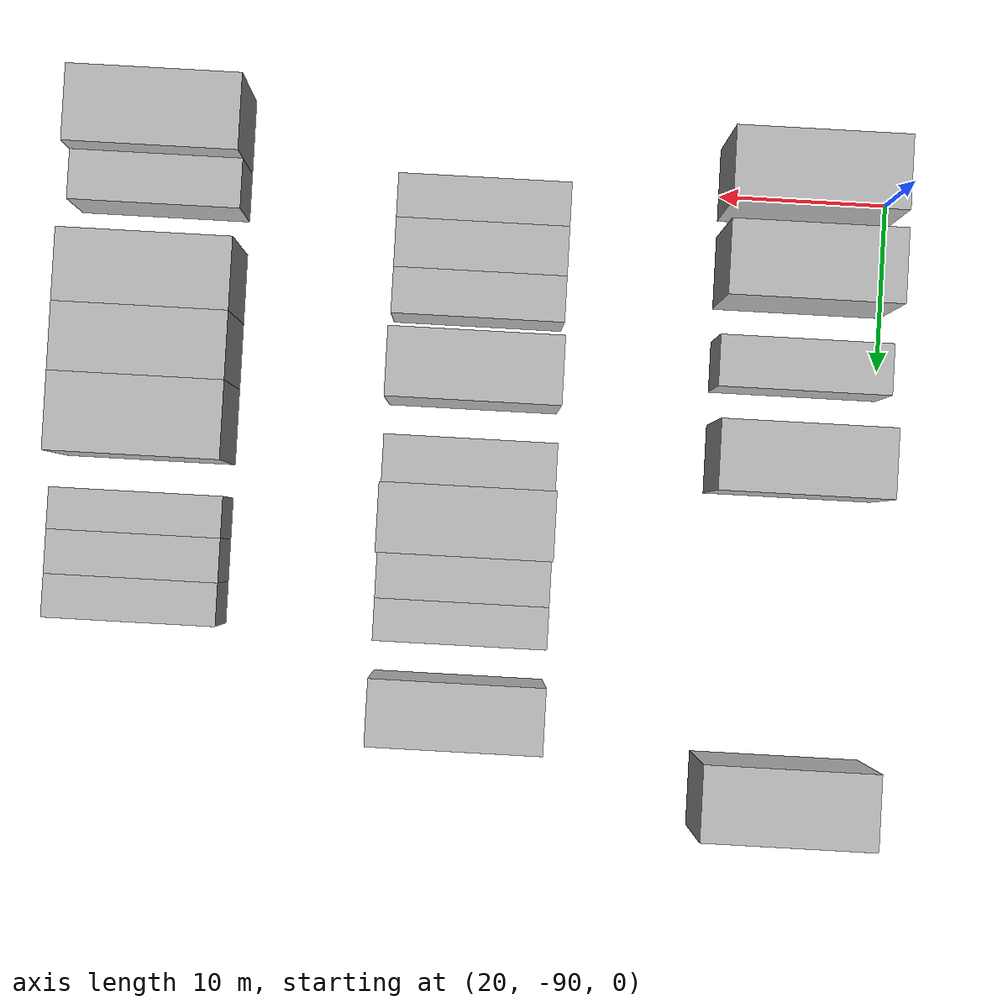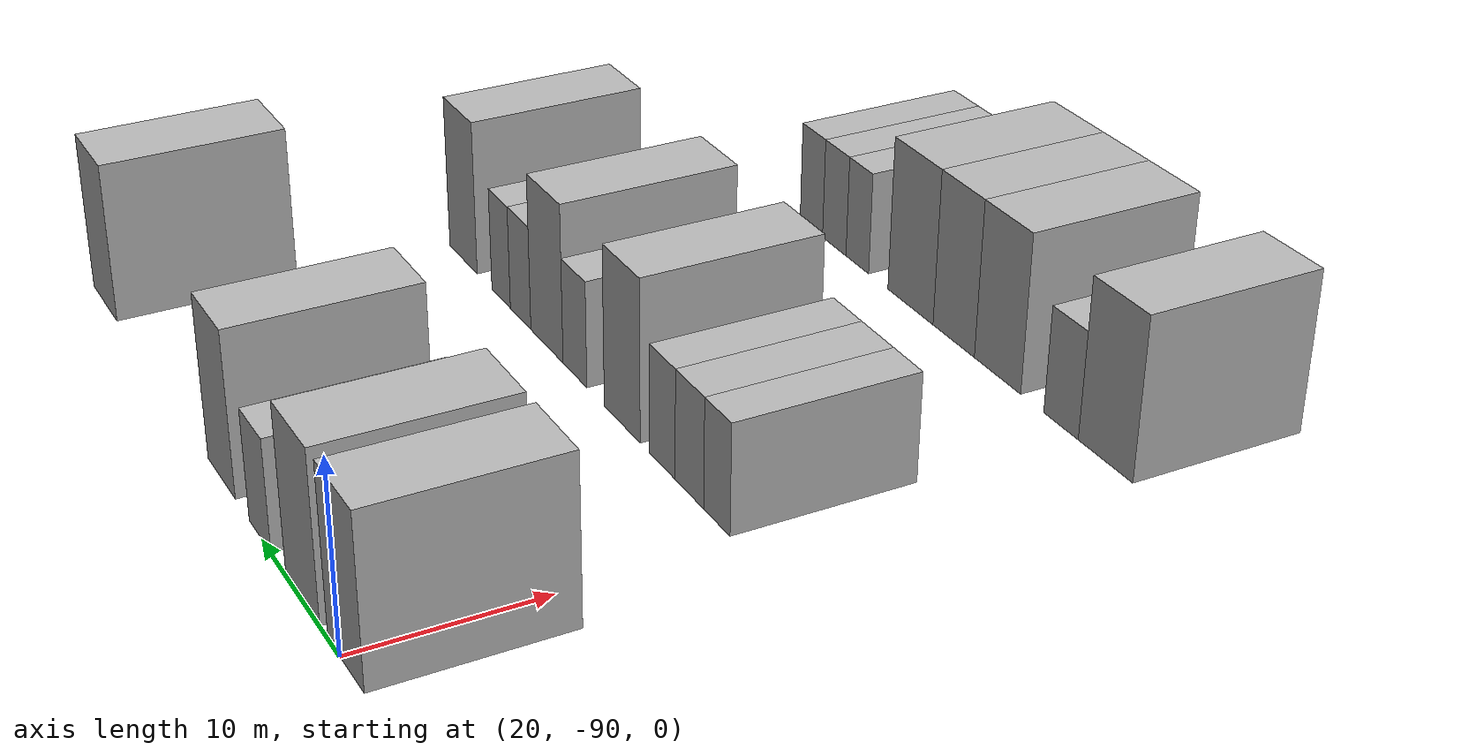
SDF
<sdf version="1.6">
 <world name="default">
  <model name="building_37">
   <static>1</static>
   <pose>25.0000 -90.6759 0 0.000000 0.000000 0.000000</pose>
   <link name="link">
    <pose>0 0 4.50 0 0 0</pose>
    <collision name="collision"><geometry><box><size>10.0000 4.2906 9.0000</size></box></geometry></collision>
    <visual name="visual">
     <cast_shadows>0</cast_shadows>
     <geometry><box><size>10.0000 4.2906 9.0000</size></box></geometry>
     <material>
      <script>
       <uri>model://HANNAS_wall/materials/scripts</uri>
       <uri>model://HANNAS_wall/materials/textures</uri>
       <name>vrc/HANNAS_wall</name>
      </script>
     </material>
    </visual>
   </link>
  </model>
  <model name="building_38">
   <static>1</static>
   <pose>25.0000 -85.3787 0 0.000000 0.000000 0.000000</pose>
   <link name="link">
    <pose>0 0 4.50 0 0 0</pose>
    <collision name="collision"><geometry><box><size>10.0000 4.3038 9.0000</size></box></geometry></collision>
    <visual name="visual">
     <cast_shadows>0</cast_shadows>
     <geometry><box><size>10.0000 4.3038 9.0000</size></box></geometry>
     <material>
      <script>
       <uri>model://HANNAS_wall/materials/scripts</uri>
       <uri>model://HANNAS_wall/materials/textures</uri>
       <name>vrc/HANNAS_wall</name>
      </script>
     </material>
    </visual>
   </link>
  </model>
  <model name="building_39">
   <static>1</static>
   <pose>25.0000 -79.7324 0 0.000000 0.000000 0.000000</pose>
   <link name="link">
    <pose>0 0 3.00 0 0 0</pose>
    <collision name="collision"><geometry><box><size>10.0000 2.9890 6.0000</size></box></geometry></collision>
    <visual name="visual">
     <cast_shadows>0</cast_shadows>
     <geometry><box><size>10.0000 2.9890 6.0000</size></box></geometry>
     <material>
      <script>
       <uri>model://HANNAS_wall/materials/scripts</uri>
       <uri>model://HANNAS_wall/materials/textures</uri>
       <name>vrc/HANNAS_wall</name>
      </script>
     </material>
    </visual>
   </link>
  </model>
  <model name="building_40">
   <static>1</static>
   <pose>25.0000 -74.2190 0 0.000000 0.000000 0.000000</pose>
   <link name="link">
    <pose>0 0 4.50 0 0 0</pose>
    <collision name="collision"><geometry><box><size>10.0000 4.0378 9.0000</size></box></geometry></collision>
    <visual name="visual">
     <cast_shadows>0</cast_shadows>
     <geometry><box><size>10.0000 4.0378 9.0000</size></box></geometry>
     <material>
      <script>
       <uri>model://HANNAS_wall/materials/scripts</uri>
       <uri>model://HANNAS_wall/materials/textures</uri>
       <name>vrc/HANNAS_wall</name>
      </script>
     </material>
    </visual>
   </link>
  </model>
  <model name="building_41">
   <static>1</static>
   <pose>25.0000 -54.6580 0 0.000000 0.000000 0.000000</pose>
   <link name="link">
    <pose>0 0 4.50 0 0 0</pose>
    <collision name="collision"><geometry><box><size>10.0000 4.3614 9.0000</size></box></geometry></collision>
    <visual name="visual">
     <cast_shadows>0</cast_shadows>
     <geometry><box><size>10.0000 4.3614 9.0000</size></box></geometry>
     <material>
      <script>
       <uri>model://HANNAS_wall/materials/scripts</uri>
       <uri>model://HANNAS_wall/materials/textures</uri>
       <name>vrc/HANNAS_wall</name>
      </script>
     </material>
    </visual>
   </link>
  </model>
  <model name="building_150">
   <static>1</static>
   <pose>44.0000 -88.2064 0 0.000000 0.000000 0.000000</pose>
   <link name="link">
    <pose>0 0 3.00 0 0 0</pose>
    <collision name="collision"><geometry><box><size>10.0000 2.5524 6.0000</size></box></geometry></collision>
    <visual name="visual">
     <cast_shadows>0</cast_shadows>
     <geometry><box><size>10.0000 2.5524 6.0000</size></box></geometry>
     <material>
      <script>
       <uri>model://HANNAS_wall/materials/scripts</uri>
       <uri>model://HANNAS_wall/materials/textures</uri>
       <name>vrc/HANNAS_wall</name>
      </script>
     </material>
    </visual>
   </link>
  </model>
  <model name="building_151">
   <static>1</static>
   <pose>44.0000 -85.4962 0 0.000000 0.000000 0.000000</pose>
   <link name="link">
    <pose>0 0 3.00 0 0 0</pose>
    <collision name="collision"><geometry><box><size>10.0000 2.8680 6.0000</size></box></geometry></collision>
    <visual name="visual">
     <cast_shadows>0</cast_shadows>
     <geometry><box><size>10.0000 2.8680 6.0000</size></box></geometry>
     <material>
      <script>
       <uri>model://HANNAS_wall/materials/scripts</uri>
       <uri>model://HANNAS_wall/materials/textures</uri>
       <name>vrc/HANNAS_wall</name>
      </script>
     </material>
    </visual>
   </link>
  </model>
  <model name="building_152">
   <static>1</static>
   <pose>44.0000 -82.7260 0 0.000000 0.000000 0.000000</pose>
   <link name="link">
    <pose>0 0 3.00 0 0 0</pose>
    <collision name="collision"><geometry><box><size>10.0000 2.6724 6.0000</size></box></geometry></collision>
    <visual name="visual">
     <cast_shadows>0</cast_shadows>
     <geometry><box><size>10.0000 2.6724 6.0000</size></box></geometry>
     <material>
      <script>
       <uri>model://HANNAS_wall/materials/scripts</uri>
       <uri>model://HANNAS_wall/materials/textures</uri>
       <name>vrc/HANNAS_wall</name>
      </script>
     </material>
    </visual>
   </link>
  </model>
  <model name="building_153">
   <static>1</static>
   <pose>44.0000 -78.4082 0 0.000000 0.000000 0.000000</pose>
   <link name="link">
    <pose>0 0 4.50 0 0 0</pose>
    <collision name="collision"><geometry><box><size>10.0000 3.9632 9.0000</size></box></geometry></collision>
    <visual name="visual">
     <cast_shadows>0</cast_shadows>
     <geometry><box><size>10.0000 3.9632 9.0000</size></box></geometry>
     <material>
      <script>
       <uri>model://HANNAS_wall/materials/scripts</uri>
       <uri>model://HANNAS_wall/materials/textures</uri>
       <name>vrc/HANNAS_wall</name>
      </script>
     </material>
    </visual>
   </link>
  </model>
  <model name="building_154">
   <static>1</static>
   <pose>44.0000 -73.0214 0 0.000000 0.000000 0.000000</pose>
   <link name="link">
    <pose>0 0 3.00 0 0 0</pose>
    <collision name="collision"><geometry><box><size>10.0000 2.8102 6.0000</size></box></geometry></collision>
    <visual name="visual">
     <cast_shadows>0</cast_shadows>
     <geometry><box><size>10.0000 2.8102 6.0000</size></box></geometry>
     <material>
      <script>
       <uri>model://HANNAS_wall/materials/scripts</uri>
       <uri>model://HANNAS_wall/materials/textures</uri>
       <name>vrc/HANNAS_wall</name>
      </script>
     </material>
    </visual>
   </link>
  </model>
  <model name="building_155">
   <static>1</static>
   <pose>44.0000 -69.6318 0 0.000000 0.000000 0.000000</pose>
   <link name="link">
    <pose>0 0 4.50 0 0 0</pose>
    <collision name="collision"><geometry><box><size>10.0000 3.9691 9.0000</size></box></geometry></collision>
    <visual name="visual">
     <cast_shadows>0</cast_shadows>
     <geometry><box><size>10.0000 3.9691 9.0000</size></box></geometry>
     <material>
      <script>
       <uri>model://HANNAS_wall/materials/scripts</uri>
       <uri>model://HANNAS_wall/materials/textures</uri>
       <name>vrc/HANNAS_wall</name>
      </script>
     </material>
    </visual>
   </link>
  </model>
  <model name="building_156">
   <static>1</static>
   <pose>44.0000 -66.3333 0 0.000000 0.000000 0.000000</pose>
   <link name="link">
    <pose>0 0 3.00 0 0 0</pose>
    <collision name="collision"><geometry><box><size>10.0000 2.6279 6.0000</size></box></geometry></collision>
    <visual name="visual">
     <cast_shadows>0</cast_shadows>
     <geometry><box><size>10.0000 2.6279 6.0000</size></box></geometry>
     <material>
      <script>
       <uri>model://HANNAS_wall/materials/scripts</uri>
       <uri>model://HANNAS_wall/materials/textures</uri>
       <name>vrc/HANNAS_wall</name>
      </script>
     </material>
    </visual>
   </link>
  </model>
  <model name="building_157">
   <static>1</static>
   <pose>44.0000 -63.8006 0 0.000000 0.000000 0.000000</pose>
   <link name="link">
    <pose>0 0 3.00 0 0 0</pose>
    <collision name="collision"><geometry><box><size>10.0000 2.4376 6.0000</size></box></geometry></collision>
    <visual name="visual">
     <cast_shadows>0</cast_shadows>
     <geometry><box><size>10.0000 2.4376 6.0000</size></box></geometry>
     <material>
      <script>
       <uri>model://HANNAS_wall/materials/scripts</uri>
       <uri>model://HANNAS_wall/materials/textures</uri>
       <name>vrc/HANNAS_wall</name>
      </script>
     </material>
    </visual>
   </link>
  </model>
  <model name="building_158">
   <static>1</static>
   <pose>44.0000 -58.6760 0 0.000000 0.000000 0.000000</pose>
   <link name="link">
    <pose>0 0 4.50 0 0 0</pose>
    <collision name="collision"><geometry><box><size>10.0000 3.8116 9.0000</size></box></geometry></collision>
    <visual name="visual">
     <cast_shadows>0</cast_shadows>
     <geometry><box><size>10.0000 3.8116 9.0000</size></box></geometry>
     <material>
      <script>
       <uri>model://HANNAS_wall/materials/scripts</uri>
       <uri>model://HANNAS_wall/materials/textures</uri>
       <name>vrc/HANNAS_wall</name>
      </script>
     </material>
    </visual>
   </link>
  </model>
  <model name="building_272">
   <static>1</static>
   <pose>63.0000 -91.9987 0 0.000000 0.000000 0.000000</pose>
   <link name="link">
    <pose>0 0 4.50 0 0 0</pose>
    <collision name="collision"><geometry><box><size>10.0000 4.3802 9.0000</size></box></geometry></collision>
    <visual name="visual">
     <cast_shadows>0</cast_shadows>
     <geometry><box><size>10.0000 4.3802 9.0000</size></box></geometry>
     <material>
      <script>
       <uri>model://HANNAS_wall/materials/scripts</uri>
       <uri>model://HANNAS_wall/materials/textures</uri>
       <name>vrc/HANNAS_wall</name>
      </script>
     </material>
    </visual>
   </link>
  </model>
  <model name="building_273">
   <static>1</static>
   <pose>63.0000 -88.3613 0 0.000000 0.000000 0.000000</pose>
   <link name="link">
    <pose>0 0 3.00 0 0 0</pose>
    <collision name="collision"><geometry><box><size>10.0000 2.8946 6.0000</size></box></geometry></collision>
    <visual name="visual">
     <cast_shadows>0</cast_shadows>
     <geometry><box><size>10.0000 2.8946 6.0000</size></box></geometry>
     <material>
      <script>
       <uri>model://HANNAS_wall/materials/scripts</uri>
       <uri>model://HANNAS_wall/materials/textures</uri>
       <name>vrc/HANNAS_wall</name>
      </script>
     </material>
    </visual>
   </link>
  </model>
  <model name="building_274">
   <static>1</static>
   <pose>63.0000 -82.8245 0 0.000000 0.000000 0.000000</pose>
   <link name="link">
    <pose>0 0 4.50 0 0 0</pose>
    <collision name="collision"><geometry><box><size>10.0000 4.1788 9.0000</size></box></geometry></collision>
    <visual name="visual">
     <cast_shadows>0</cast_shadows>
     <geometry><box><size>10.0000 4.1788 9.0000</size></box></geometry>
     <material>
      <script>
       <uri>model://HANNAS_wall/materials/scripts</uri>
       <uri>model://HANNAS_wall/materials/textures</uri>
       <name>vrc/HANNAS_wall</name>
      </script>
     </material>
    </visual>
   </link>
  </model>
  <model name="building_275">
   <static>1</static>
   <pose>63.0000 -78.7759 0 0.000000 0.000000 0.000000</pose>
   <link name="link">
    <pose>0 0 4.50 0 0 0</pose>
    <collision name="collision"><geometry><box><size>10.0000 3.9184 9.0000</size></box></geometry></collision>
    <visual name="visual">
     <cast_shadows>0</cast_shadows>
     <geometry><box><size>10.0000 3.9184 9.0000</size></box></geometry>
     <material>
      <script>
       <uri>model://HANNAS_wall/materials/scripts</uri>
       <uri>model://HANNAS_wall/materials/textures</uri>
       <name>vrc/HANNAS_wall</name>
      </script>
     </material>
    </visual>
   </link>
  </model>
  <model name="building_276">
   <static>1</static>
   <pose>63.0000 -74.5694 0 0.000000 0.000000 0.000000</pose>
   <link name="link">
    <pose>0 0 4.50 0 0 0</pose>
    <collision name="collision"><geometry><box><size>10.0000 4.4947 9.0000</size></box></geometry></collision>
    <visual name="visual">
     <cast_shadows>0</cast_shadows>
     <geometry><box><size>10.0000 4.4947 9.0000</size></box></geometry>
     <material>
      <script>
       <uri>model://HANNAS_wall/materials/scripts</uri>
       <uri>model://HANNAS_wall/materials/textures</uri>
       <name>vrc/HANNAS_wall</name>
      </script>
     </material>
    </visual>
   </link>
  </model>
  <model name="building_277">
   <static>1</static>
   <pose>63.0000 -69.1179 0 0.000000 0.000000 0.000000</pose>
   <link name="link">
    <pose>0 0 3.00 0 0 0</pose>
    <collision name="collision"><geometry><box><size>10.0000 2.4084 6.0000</size></box></geometry></collision>
    <visual name="visual">
     <cast_shadows>0</cast_shadows>
     <geometry><box><size>10.0000 2.4084 6.0000</size></box></geometry>
     <material>
      <script>
       <uri>model://HANNAS_wall/materials/scripts</uri>
       <uri>model://HANNAS_wall/materials/textures</uri>
       <name>vrc/HANNAS_wall</name>
      </script>
     </material>
    </visual>
   </link>
  </model>
  <model name="building_278">
   <static>1</static>
   <pose>63.0000 -66.6341 0 0.000000 0.000000 0.000000</pose>
   <link name="link">
    <pose>0 0 3.00 0 0 0</pose>
    <collision name="collision"><geometry><box><size>10.0000 2.5593 6.0000</size></box></geometry></collision>
    <visual name="visual">
     <cast_shadows>0</cast_shadows>
     <geometry><box><size>10.0000 2.5593 6.0000</size></box></geometry>
     <material>
      <script>
       <uri>model://HANNAS_wall/materials/scripts</uri>
       <uri>model://HANNAS_wall/materials/textures</uri>
       <name>vrc/HANNAS_wall</name>
      </script>
     </material>
    </visual>
   </link>
  </model>
  <model name="building_279">
   <static>1</static>
   <pose>63.0000 -64.1040 0 0.000000 0.000000 0.000000</pose>
   <link name="link">
    <pose>0 0 3.00 0 0 0</pose>
    <collision name="collision"><geometry><box><size>10.0000 2.5010 6.0000</size></box></geometry></collision>
    <visual name="visual">
     <cast_shadows>0</cast_shadows>
     <geometry><box><size>10.0000 2.5010 6.0000</size></box></geometry>
     <material>
      <script>
       <uri>model://HANNAS_wall/materials/scripts</uri>
       <uri>model://HANNAS_wall/materials/textures</uri>
       <name>vrc/HANNAS_wall</name>
      </script>
     </material>
    </visual>
   </link>
  </model>
 </world>
</sdf>
